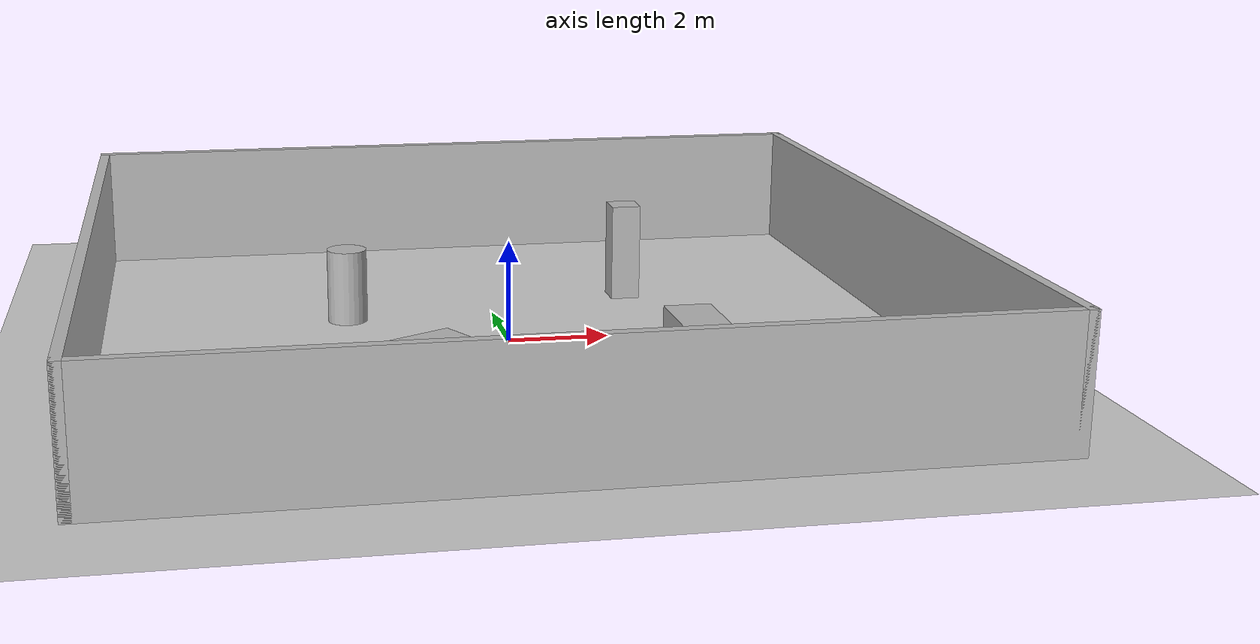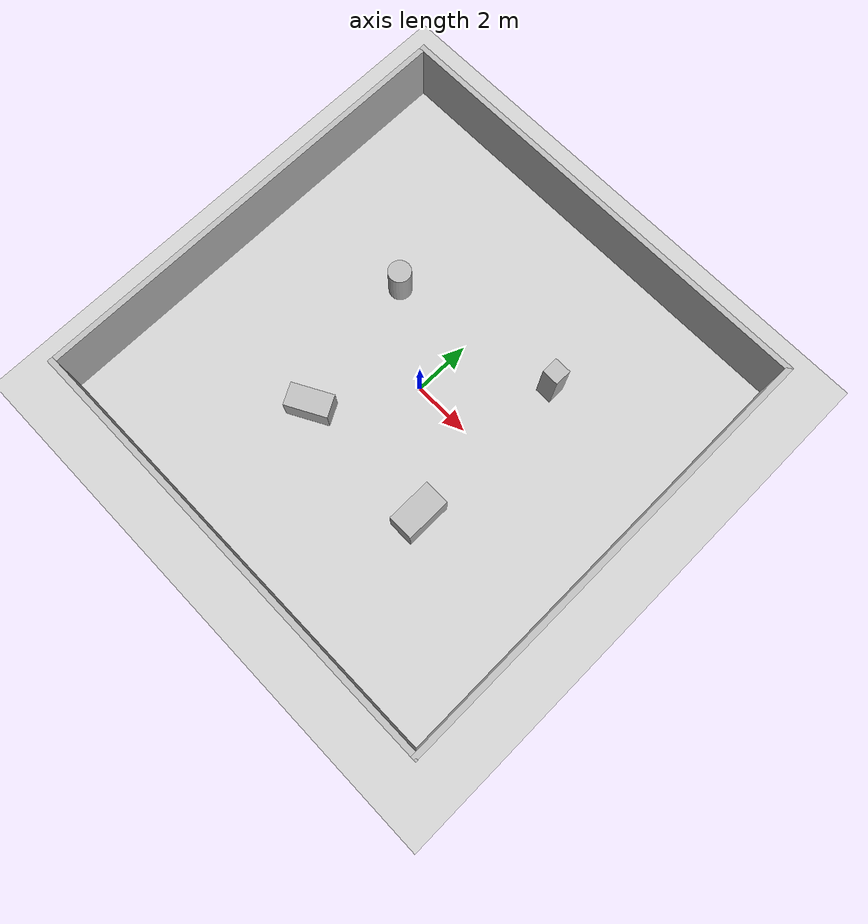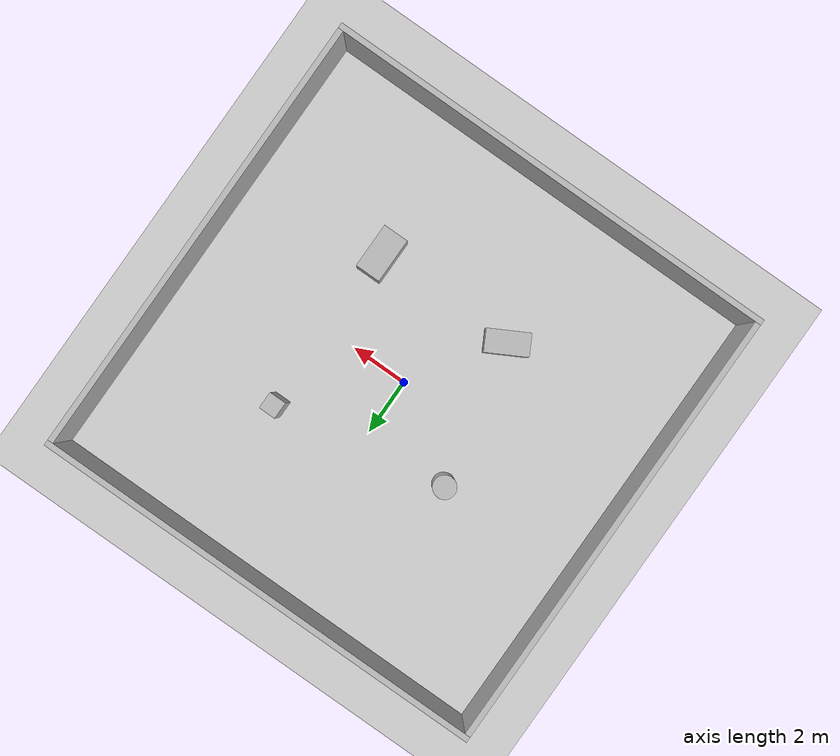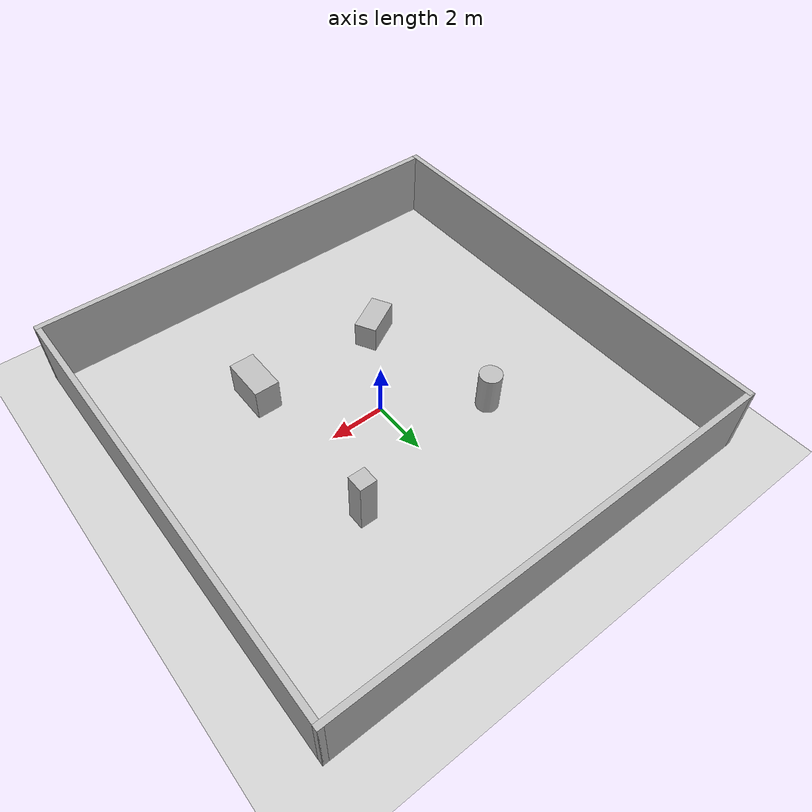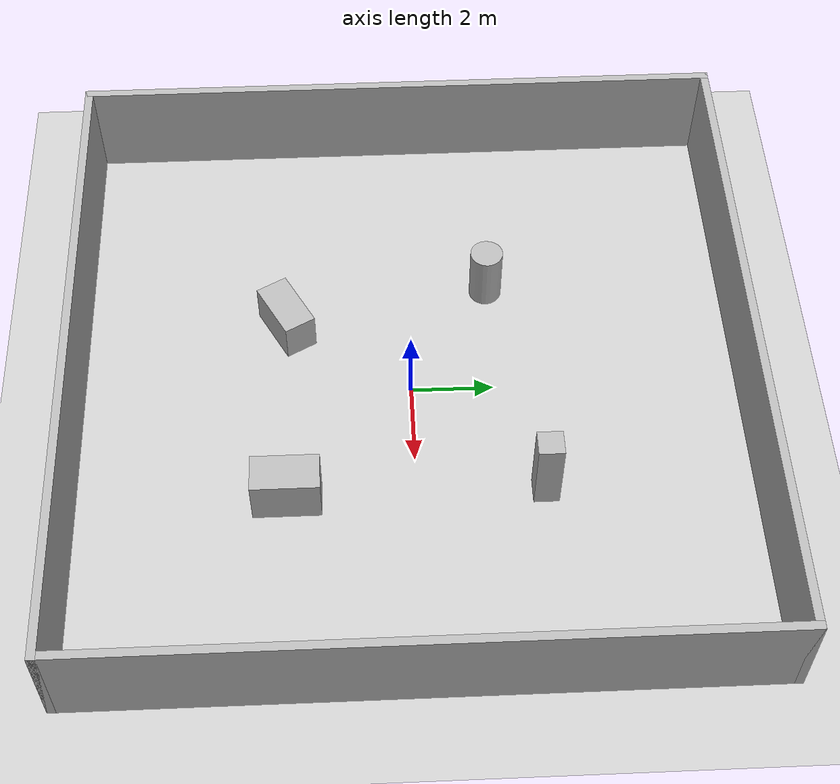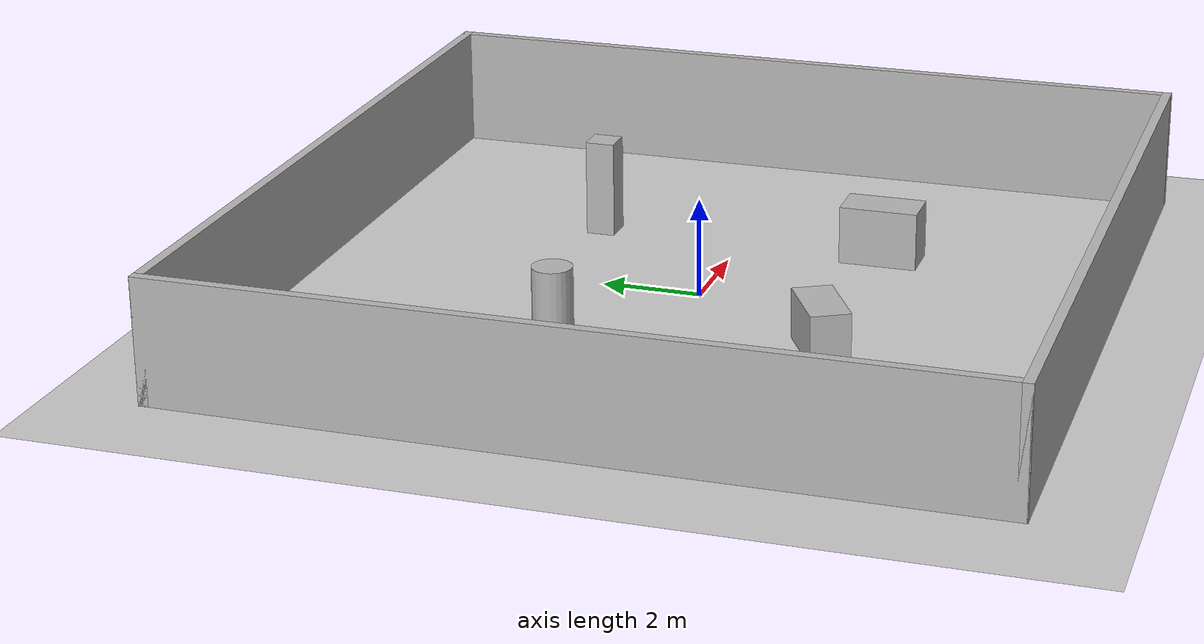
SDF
<?xml version="1.0"?>
<sdf version="1.6">
  <world name="room">
    <include><uri>model://ground_plane</uri></include>
    <include><uri>model://sun</uri></include>

    <!-- 16x16 m room, walls 2.5 m tall, 0.2 thick -->
    <model name="wall_n"><static>true</static><pose>0 8 1.25 0 0 0</pose>
      <link name="l"><collision name="c"><geometry><box><size>16.2 0.2 2.5</size></box></geometry></collision>
      <visual name="v"><geometry><box><size>16.2 0.2 2.5</size></box></geometry></visual></link></model>
    <model name="wall_s"><static>true</static><pose>0 -8 1.25 0 0 0</pose>
      <link name="l"><collision name="c"><geometry><box><size>16.2 0.2 2.5</size></box></geometry></collision>
      <visual name="v"><geometry><box><size>16.2 0.2 2.5</size></box></geometry></visual></link></model>
    <model name="wall_e"><static>true</static><pose>8 0 1.25 0 0 0</pose>
      <link name="l"><collision name="c"><geometry><box><size>0.2 16.2 2.5</size></box></geometry></collision>
      <visual name="v"><geometry><box><size>0.2 16.2 2.5</size></box></geometry></visual></link></model>
    <model name="wall_w"><static>true</static><pose>-8 0 1.25 0 0 0</pose>
      <link name="l"><collision name="c"><geometry><box><size>0.2 16.2 2.5</size></box></geometry></collision>
      <visual name="v"><geometry><box><size>0.2 16.2 2.5</size></box></geometry></visual></link></model>

    <!-- interior pillars / boxes: asymmetric features so ICP is well-constrained -->
    <model name="pillar_1"><static>true</static><pose>3 3 1 0 0 0</pose>
      <link name="l"><collision name="c"><geometry><box><size>0.6 0.6 2.0</size></box></geometry></collision>
      <visual name="v"><geometry><box><size>0.6 0.6 2.0</size></box></geometry></visual></link></model>
    <model name="pillar_2"><static>true</static><pose>-3 2 0.75 0 0 0</pose>
      <link name="l"><collision name="c"><geometry><cylinder><radius>0.4</radius><length>1.5</length></cylinder></geometry></collision>
      <visual name="v"><geometry><cylinder><radius>0.4</radius><length>1.5</length></cylinder></geometry></visual></link></model>
    <model name="box_3"><static>true</static><pose>-2 -3 0.5 0 0 0.5</pose>
      <link name="l"><collision name="c"><geometry><box><size>1.5 0.8 1.0</size></box></geometry></collision>
      <visual name="v"><geometry><box><size>1.5 0.8 1.0</size></box></geometry></visual></link></model>
    <model name="box_4"><static>true</static><pose>3 -3 0.6 0 0 0</pose>
      <link name="l"><collision name="c"><geometry><box><size>0.9 1.6 1.2</size></box></geometry></collision>
      <visual name="v"><geometry><box><size>0.9 1.6 1.2</size></box></geometry></visual></link></model>

    <physics name="default" type="ode"><real_time_update_rate>1000</real_time_update_rate><max_step_size>0.001</max_step_size></physics>
  </world>
</sdf>
